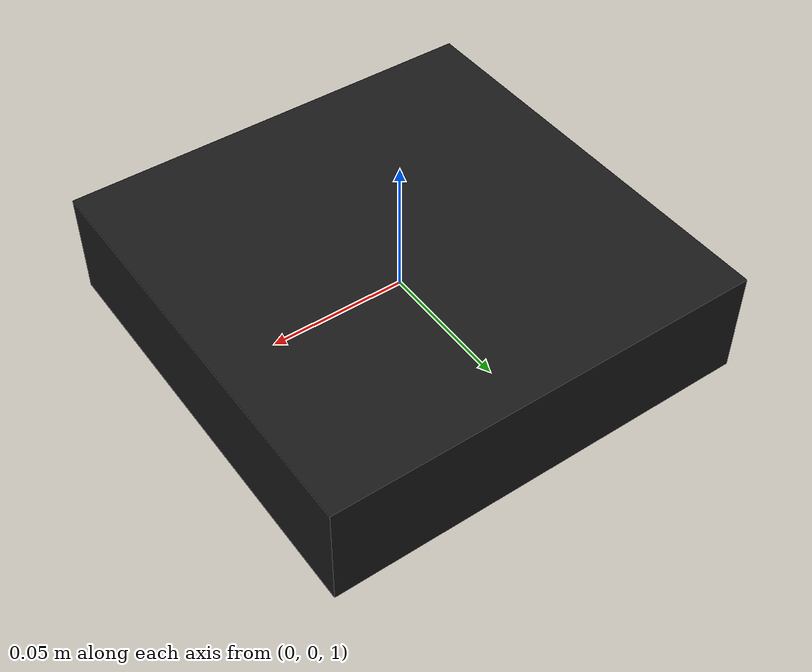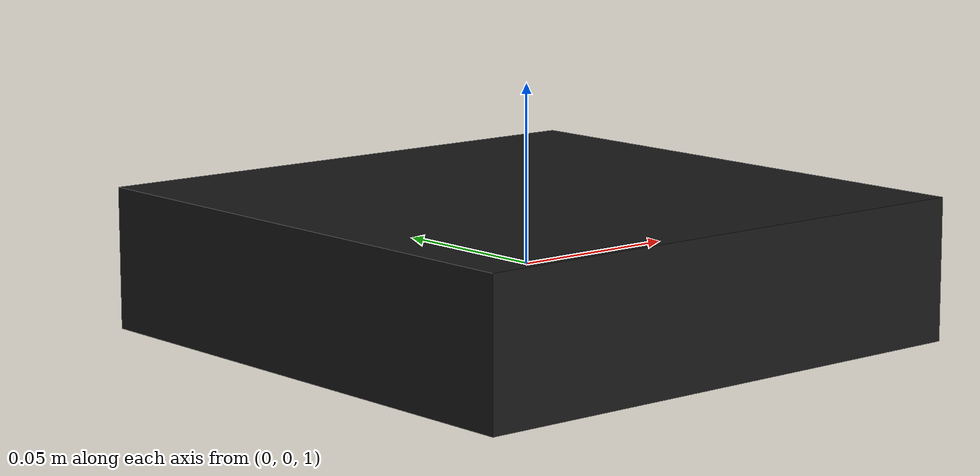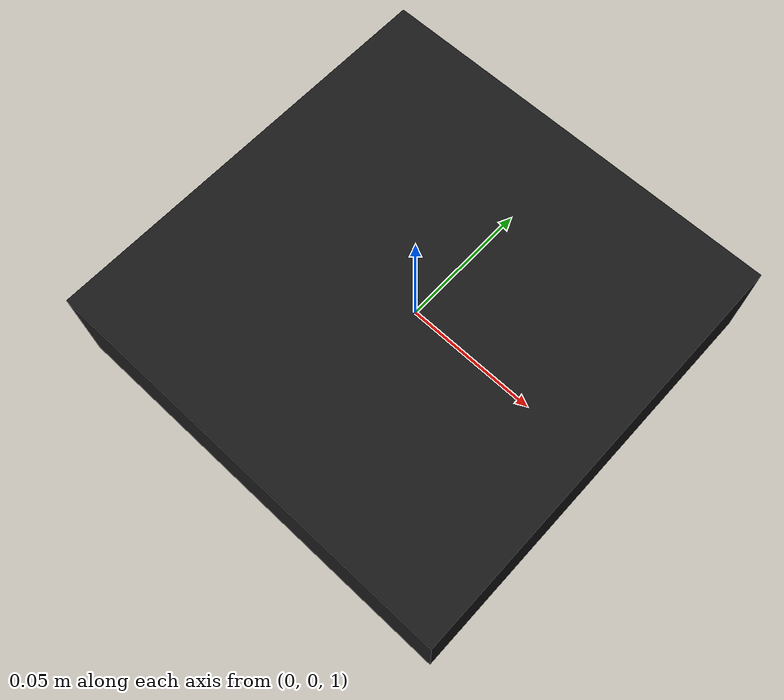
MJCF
<mujoco model="drone_hoops">
  <compiler angle="radian" coordinate="local" inertiafromgeom="true"/>
  <option timestep="0.001" gravity="0 0 -9.81" integrator="RK4"/>

  <visual>
    <quality shadowsize="2048"/>
    <map znear="0.01"/>
  </visual>

  <asset>
    <texture name="grid" type="2d" builtin="checker" rgb1="0.2 0.2 0.2" rgb2="0.3 0.3 0.3" width="256" height="256"/>
    <material name="gridmat" texture="grid" texrepeat="10 10" reflectance="0.0"/>
  </asset>

  <worldbody>
    <geom name="ground" type="plane" size="50 50 0.1" material="gridmat" rgba="0.9 0.9 0.9 1" contype="1" conaffinity="1"/>

    <!-- Drone: a single rigid body with a free joint.
         We apply forces/torques in Python (mj_applyFT), not via XML actuators. -->
    <body name="drone" pos="0 0 1">
      <freejoint/>
      <geom name="drone_geom" type="box" size="0.08 0.08 0.02" rgba="0.1 0.1 0.1 1" contype="1" conaffinity="1"/>

      <!-- FPV camera rigidly attached to drone body. -->
      <camera name="fpv" pos="0.10 0 0.02" quat="0.9238795 0 0.3826834 0" fovy="140"/>
    </body>

    <!-- Gates are created/updated in Python as sites (visual-only) and not collidable by default. -->
  </worldbody>
</mujoco>
